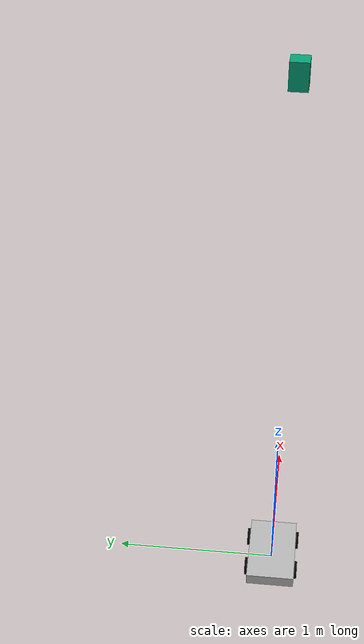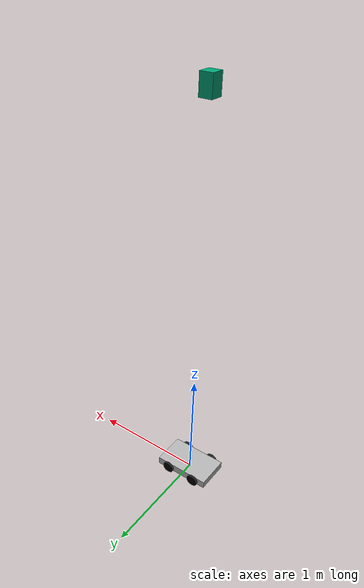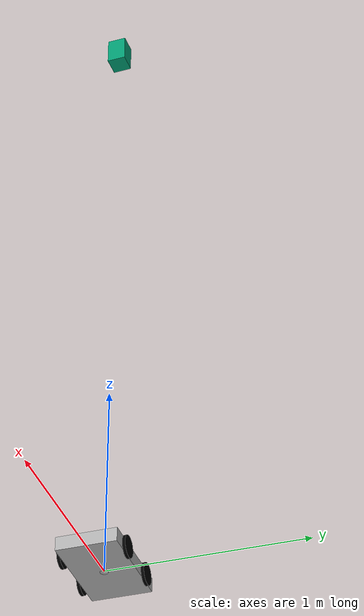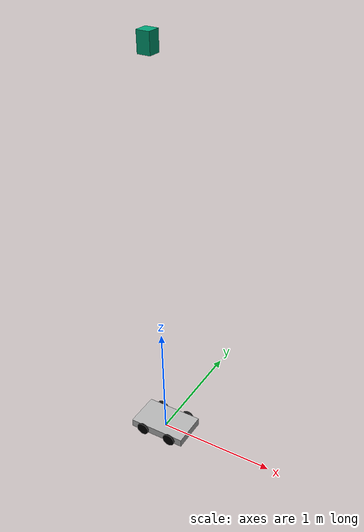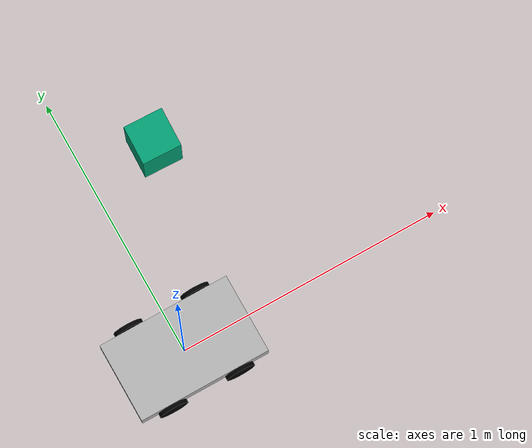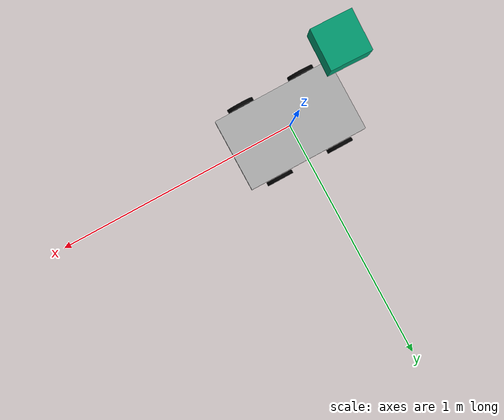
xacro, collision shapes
<?xml version="1.0" ?>
<robot name="willand" xmlns:xacro="http://www.ros.org/wiki/xacro">

<xacro:include filename="$(find willand_description)/urdf/materials.xacro" />
<xacro:include filename="$(find willand_description)/urdf/willand.trans" />
<xacro:include filename="$(find willand_description)/urdf/willand.gazebo" />
<xacro:property name="PI" value="3.14"/>

<!-- Base link definition -->
<link name="base_link">
    <visual>
      <geometry>
        <mesh
          filename="package://willand_description/meshes/Body.STL" />
      </geometry>
        <origin rpy="1.5705 0 0" xyz="-0.25 0.1675 -0.0075"/>
      <material name="silver" />
    </visual>
    <collision>
      <geometry>
        <box size="0.5 0.3 0.07"/>
      </geometry>
      <origin rpy="0 0 0" xyz="0 0 0.035"/>
    </collision>
    <inertial>
      <origin xyz="-0.00509 0 0.03461" rpy="0 0 0"/>
      <mass value="30"/>
      <inertia
        ixx="63.621330" ixy="11.057206" ixz="0.021099"
        iyy="187.798863" iyz="-0.003735"
        izz="169.286082"/>
    </inertial>
</link>

<!-- IMU link definition -->
<link name="imu_link">
  <inertial>
    <origin rpy="0 0 0.02" xyz="0 0 0"/>
    <mass value="0"/>
    <inertia ixx="0.001" ixy="0.0" ixz="0.0" iyy="0.001" iyz="0.0" izz="0.001"/>
  </inertial>
  <visual>
    <origin rpy="0 0 0" xyz="0 0 0"/>
    <geometry>
      <cylinder length="0.01" radius="0.02"/>
    </geometry>
    <material name="silver" />
  </visual>
  <collision>
    <origin rpy="0 0 0" xyz="0 0 0"/>
    <geometry>
      <cylinder length="0.01" radius="0.02"/>
    </geometry>
  </collision>
</link>

<!-- IMU Joint definition -->
<joint name="imu_joint" type="fixed">
  <parent link="base_link"/>
  <child link="imu_link"/>
  <origin xyz="0 0 0" rpy="0 0 0"/>
</joint>

<!-- IMU plugin for 'body_link' -->
<gazebo reference="imu_link">
  <gravity>true</gravity>
  <sensor name="imu_sensor" type="imu">
    <always_on>true</always_on>
    <update_rate>100</update_rate>
    <visualize>true</visualize>
    <topic>imu/data</topic> <!-- Specify a unique topic name -->
    <plugin filename="libgazebo_ros_imu_sensor.so" name="imu_plugin">
      <topicName>imu/data</topicName> <!-- Use the same topic name as above -->
      <bodyName>body_link</bodyName>
      <updateRateHZ>100.0</updateRateHZ>
      <gaussianNoise>0.0</gaussianNoise>
      <xyzOffset>0 0 0</xyzOffset>
      <rpyOffset>0 0 0</rpyOffset>
      <frameName>imu_link</frameName>
    </plugin>
    <pose>0 0 0 0 0 0</pose> <!-- Position relative to imu_link -->
  </sensor>
</gazebo>

<!-- LiDAR link definition -->
<link name="lidar_link">
  <inertial>
    <origin rpy="0 0 0" xyz="0 0 0"/>
    <mass value="0"/>
    <inertia ixx="0.002" ixy="0.0" ixz="0.0" iyy="0.002" iyz="0.0" izz="0.002"/>
  </inertial>
  <visual>
    <origin xyz="0 0 -0.03" rpy="1.57 0 3.14"/>
    <geometry>
      <mesh filename="package://willand_description/meshes/livox-mid360.dae">
      </mesh>
    </geometry>
  </visual>
  <collision>
    <origin rpy="0 0 -0.03" xyz="0 0 3.14"/>
    <geometry>
      <box size="0.1 0.1 0.15"/>
    </geometry>
  </collision>
</link>

<!-- LiDAR Joint definition -->
<joint name="lidar_joint" type="fixed">
  <parent link="base_link"/>
  <child link="lidar_link"/>
  <origin xyz="0 0 0.2" rpy="0 0 0"/> <!-- 设置LiDAR的位置，您可以根据需要调整高度 -->
</joint>

<!-- LiDAR plugin configuration -->
<gazebo reference="lidar_link">
  <sensor type="ray" name="lidar_sensor">
    <pose>0 0 0 0 0 0</pose>
    <visualize>false</visualize>
    <update_rate>10</update_rate>
    <ray>
      <scan>
        <horizontal>
          <samples>360</samples>
          <resolution>1</resolution>
          <min_angle>-1.57</min_angle>
          <max_angle>1.57</max_angle>
        </horizontal>
        <vertical>
          <samples>30</samples>
          <resolution>1</resolution>
          <min_angle>-0.3</min_angle>
          <max_angle>0.3</max_angle>
        </vertical>
      </scan>
      <range>
        <min>0.1</min>
        <max>100</max>
        <resolution>0.01</resolution>
      </range>
    </ray>
    <plugin name="gazebo_ros_lidar" filename="libgazebo_ros_laser.so">
      <topicName>/willand/livox/lidar/scan</topicName> <!-- 发布的激光雷达话题 -->
      <frameName>lidar_link</frameName>
    </plugin>
  </sensor>
</gazebo>

<link name="wheel_front_left_1">
  <visual>
    <geometry>
      <mesh
        filename="package://willand_description/meshes/Wheel.STL" />
    </geometry>
    <origin rpy="1.5705 0 0" xyz="-0.055 0 -0.055"/>
    <material name="black">
      <color rgba="0 0 0 1"/>
    </material>
  </visual>
  <collision>
    <geometry>
      <cylinder length="0.015" radius="0.055"/>
    </geometry>
    <origin rpy="1.5705 0 0" xyz="0 -0.0075 0"/>
  </collision>
  <inertial>
    <origin xyz="0 -0.0075 0" rpy="0 0 0"/>
    <mass value="1.5"/>
    <inertia
      ixx="0.09065214" ixy="0.0" ixz="0.0"
      iyy="0.09065214" iyz="0.0"
      izz="0.17745989"/>
  </inertial>
</link>

<link name="wheel_front_right_1">
  <visual>
    <geometry>
      <mesh
        filename="package://willand_description/meshes/Wheel.STL" />
    </geometry>
    <origin rpy="1.5705 0 0" xyz="-0.055 0 -0.055 "/>
    <material name="black">
      <color rgba="0 0 0 1"/>
    </material>
  </visual>
  <collision>
    <geometry>
      <cylinder length="0.015" radius="0.055"/>
    </geometry>
    <origin rpy="1.5705 0 0" xyz="0 -0.0075 0"/>
  </collision>
  <inertial>
    <origin xyz="0 -0.0075 0" rpy="0 0 0"/>
    <mass value="1.5"/>
    <inertia
      ixx="0.09065214" ixy="0.0" ixz="0.0"
      iyy="0.09065214" iyz="0.0"
      izz="0.17745989"/>
  </inertial>
</link>

<link name="wheel_rear_left_1">
    <visual>
      <geometry>
        <mesh
          filename="package://willand_description/meshes/Wheel.STL" />
      </geometry>
      <origin rpy="1.5705 0 0" xyz="-0.055 0 -0.055"/>
      <material name="black">
        <color rgba="0 0 0 1"/>
      </material>
    </visual>
    <collision>
      <geometry>
        <cylinder length="0.015" radius="0.055"/>
      </geometry>
      <origin rpy="1.5705 0 0" xyz="0 -0.0075 0"/>
    </collision>
    <inertial>
      <origin xyz="0 -0.0075 0" rpy="0 0 0"/>
      <mass value="1.5"/>
      <inertia
        ixx="0.09065214" ixy="0.0" ixz="0.0"
        iyy="0.09065214" iyz="0.0"
        izz="0.17745989"/>
    </inertial>
</link>

<link name="wheel_rear_right_1">
  <visual>
    <geometry>
      <mesh
        filename="package://willand_description/meshes/Wheel.STL" />
    </geometry>
    <origin rpy="1.5705 0 0" xyz="-0.055 0 -0.055"/>
    <material name="black">
      <color rgba="0 0 0 1"/>
    </material>
  </visual>
  <collision>
    <geometry>
      <cylinder length="0.015" radius="0.055"/>
    </geometry>
    <origin rpy="1.5705 0 0" xyz="0 -0.0075 0"/>
  </collision>
  <inertial>
    <origin xyz="0 -0.0075 0" rpy="0 0 0"/>
    <mass value="1.5"/>
    <inertia
      ixx="0.09065214" ixy="0.0" ixz="0.0"
      iyy="0.09065214" iyz="0.0"
      izz="0.17745989"/>
  </inertial>
</link>

<joint name="joint_front_left" type="continuous">
  <origin rpy="0 0 0" xyz="0.13189 0.1675 0.03018 "/>
  <axis rpy="0 0 0" xyz="0 1 0"/>
  <parent link="base_link"/>
  <child link="wheel_front_left_1"/>
  <axis xyz="0.0 1.0 0.0"/>
  <limit effort="10000" velocity="1000"/>
  <joint_properties damping="1.0" friction="1.0"/>
  <sensor name="force_torque" type="force_torque">
    <update_rate>30</update_rate>
  </sensor>
</joint>

<joint name="joint_front_right" type="continuous">
  <origin rpy="0 0 0" xyz="0.13189 -0.1525 0.03018 "/>
  <axis rpy="0 0 0" xyz="0 1 0"/>
  <parent link="base_link"/>
  <child link="wheel_front_right_1"/>
  <axis xyz="0.0 1.0 0.0"/>
  <limit effort="10000" velocity="1000"/>
  <joint_properties damping="1.0" friction="1.0"/>
</joint>

<joint name="joint_rear_left" type="continuous">
  <origin rpy="0 0 0" xyz="-0.13211 0.1675 0.03018 "/>
  <axis rpy="0 0 0" xyz="0 1 0"/>
  <parent link="base_link"/>
  <child link="wheel_rear_left_1"/>
  <axis xyz="0.0 1.0 0.0"/>
  <limit effort="10000" velocity="1000"/>
  <joint_properties damping="1.0" friction="1.0"/>
</joint>

<joint name="joint_rear_right" type="continuous">
  <origin rpy="0 0 0" xyz="-0.13211 -0.1525 0.03018 "/>
  <axis rpy="0 0 0" xyz="0 1 0"/>
  <parent link="base_link"/>
  <child link="wheel_rear_right_1"/>
  <axis xyz="0.0 1.0 0.0"/>
  <limit effort="10000" velocity="1000"/>
  <joint_properties damping="1.0" friction="1.0"/>
</joint>

<gazebo reference="wheel_front_left_1">
  <sensor name="force_sensor" type="force_torque">
    <pose>0 0 0 0 0 0</pose> <!-- 相对于轮子的位置 -->
    <always_on>true</always_on> <!-- 始终启用传感器 -->
    <update_rate>100</update_rate> <!-- 传感器更新频率 -->
    <plugin name="gazebo_ros_force_torque_sensor" filename="libgazebo_ros_force_torque.so">
      <topicName>/willand/force_torque/wheel_front_left</topicName> <!-- 发布的ROS话题 -->
      <frameName>wheel_front_left_1</frameName> <!-- 力传感器参考系 -->
      <gaussianNoise>0.0</gaussianNoise> <!-- 可选：指定噪声，如果需要的话 -->
    </plugin>
  </sensor>
</gazebo>

</robot>

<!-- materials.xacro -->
<robot name="willand" xmlns:xacro="http://www.ros.org/wiki/xacro" >

  <xacro:macro name="materials" params="name rgba">
    <material name="${name}">
      <color rgba="${rgba}"/>
    </material>
  </xacro:macro>

<xacro:materials name="silver" rgba="0.700 0.700 0.700 1.000"/>
<xacro:materials name="orange" rgba="1.0 0.423529411765 0.0392156862745 1.0"/>

</robot>

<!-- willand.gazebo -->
<robot name="willand" xmlns:xacro="http://www.ros.org/wiki/xacro" >

<xacro:property name="body_color" value="Gazebo/Orange" />
<xacro:property name="wheel_color" value="Gazebo/Silver" />

<gazebo>
  <plugin filename="libgazebo_ros_control.so" name="control">
    <robotNamespace>/willand</robotNamespace>
  </plugin>
</gazebo>
<gazebo reference="base_link">
  <material>${body_color}</material>
  <mu1>0.2</mu1>
  <mu2>0.2</mu2>
  <selfCollide>true</selfCollide>
  <gravity>true</gravity>
</gazebo>

<gazebo reference="wheel_front_left_1">
  <material>${wheel_color}</material>
  <mu1>0.2</mu1>
  <mu2>0.2</mu2>
  <selfCollide>true</selfCollide>
</gazebo>

<gazebo reference="wheel_front_right_1">
  <material>${wheel_color}</material>
  <mu1>0.2</mu1>
  <mu2>0.2</mu2>
  <selfCollide>true</selfCollide>
</gazebo>

<gazebo reference="wheel_rear_left_1">
  <material>${wheel_color}</material>
  <mu1>0.2</mu1>
  <mu2>0.2</mu2>
  <selfCollide>true</selfCollide>
</gazebo>

<gazebo reference="wheel_rear_right_1">
  <material>${wheel_color}</material>
  <mu1>0.2</mu1>
  <mu2>0.2</mu2>
  <selfCollide>true</selfCollide>
</gazebo>

</robot>
